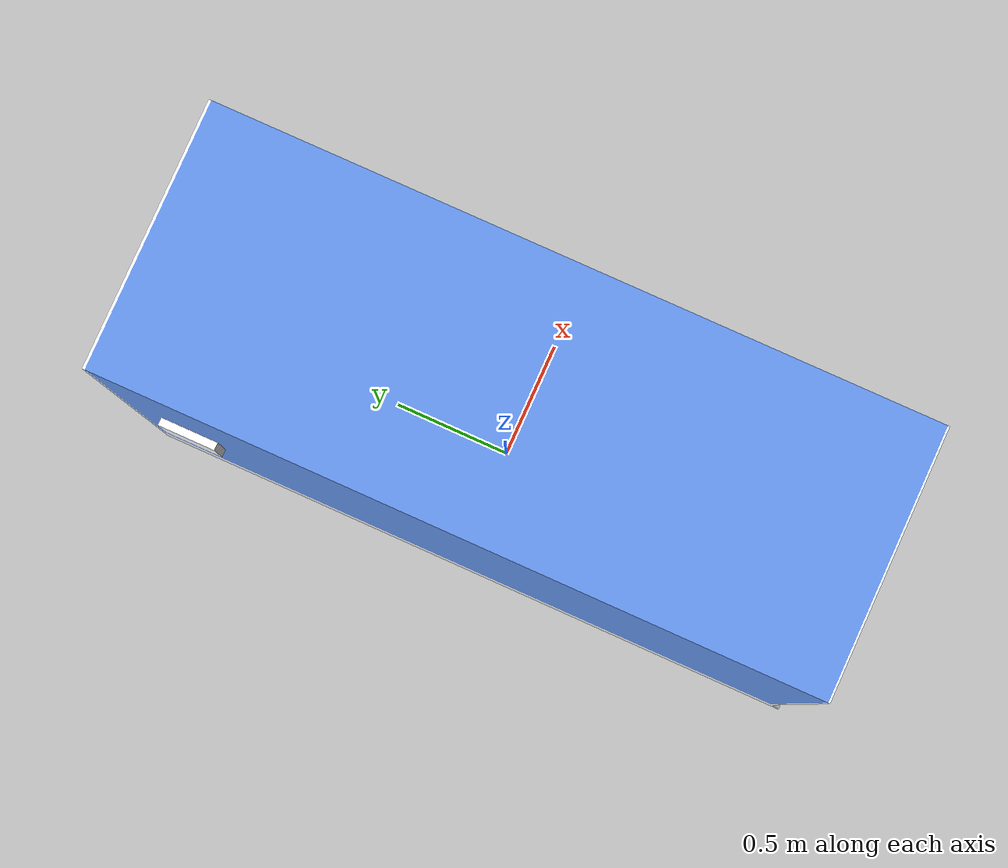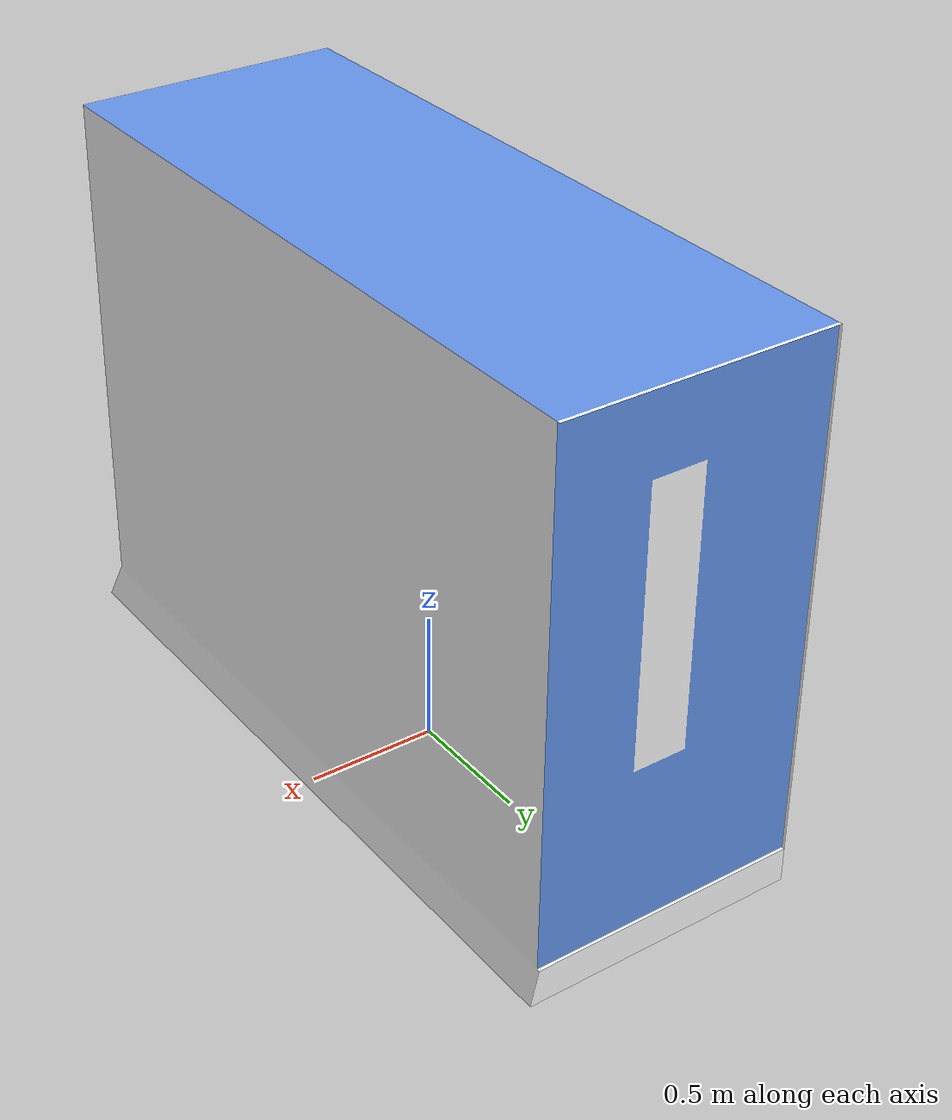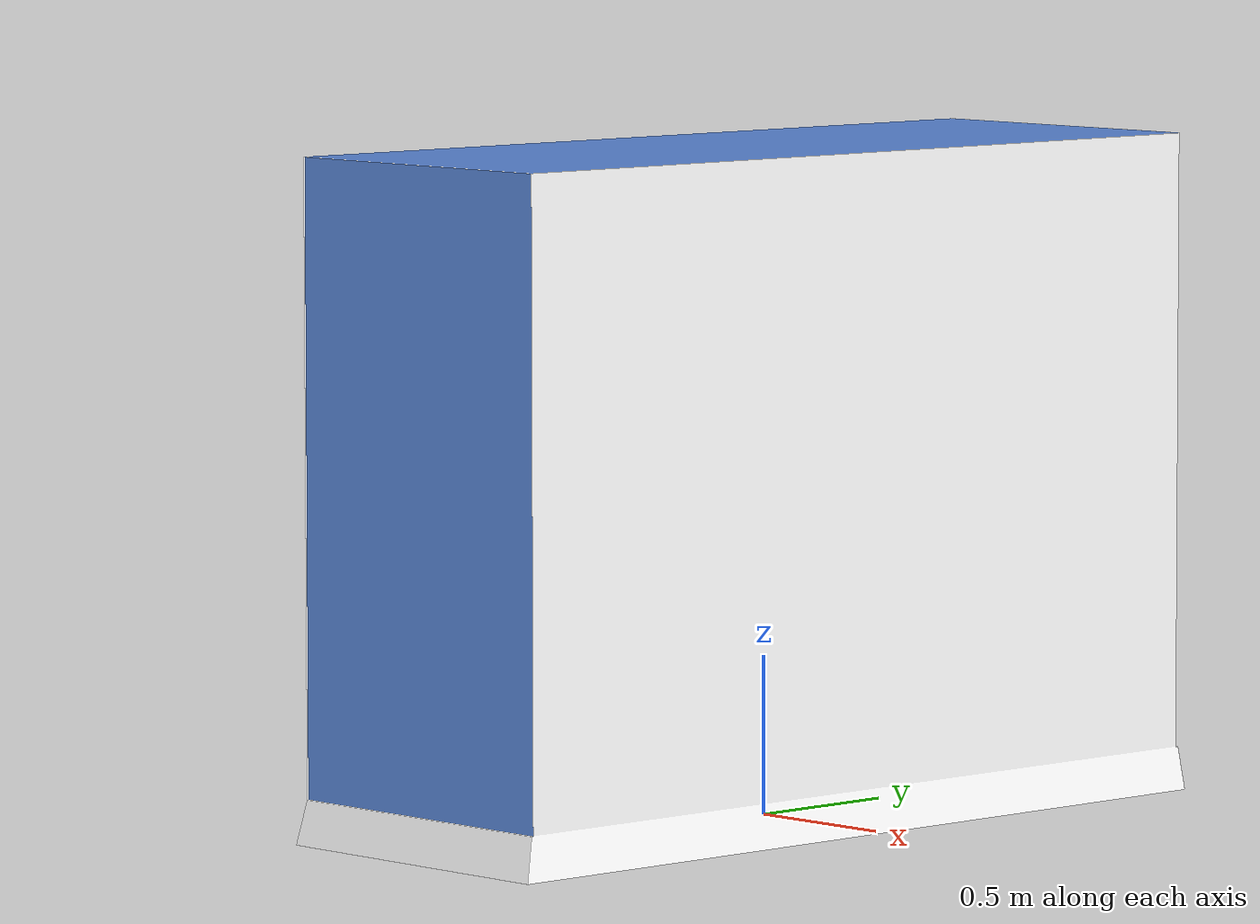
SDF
<?xml version="1.0" ?>
<sdf version="1.5">
  <model name="shower_big_1">
    <link name="link">
      <pose>0 0 0 0 0 0</pose>
      <collision name="collision">
        <geometry>
          <mesh>
            <uri>model://shower_big_1/meshes/model.dae</uri>
          </mesh>
        </geometry>
      </collision>
      <visual name="visual">
        <geometry>
          <mesh>
            <uri>model://shower_big_1/meshes/model.dae</uri>
          </mesh>
        </geometry>
      </visual>
    </link>
    <static>1</static>
  </model>
</sdf>
